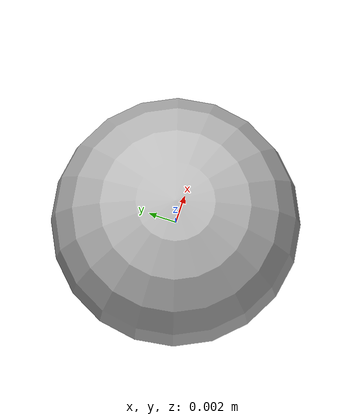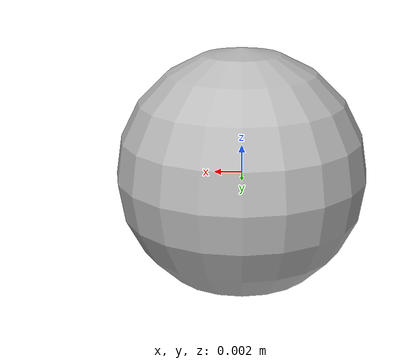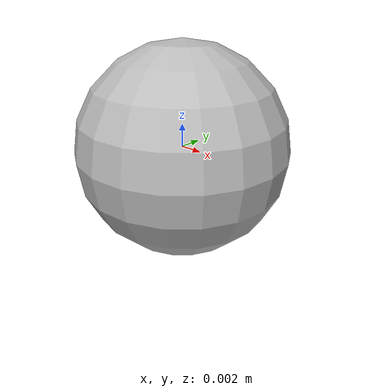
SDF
<?xml version="1.0"?>

<sdf version="1.7">

    <model name="marble">

        <static>false</static>

        <link name="marble_link">

            <inertial>
                <mass>0.005</mass>
                <inertia>
                    <ixx>0.000000162</ixx>
                    <iyy>0.000000162</iyy>
                    <izz>0.000000162</izz>

                    <ixy>0</ixy>
                    <ixz>0</ixz>
                    <iyz>0</iyz>
                </inertia>
            </inertial>

            <collision name="collision_box">
                <geometry>
                    <sphere>
                        <radius>0.009</radius>
                    </sphere>
                </geometry>
            </collision>

            <visual name="visual">
                <geometry>
                    <sphere>
                        <radius>0.009</radius>
                    </sphere>
                </geometry>
            </visual>

        </link>

    </model>
</sdf>
